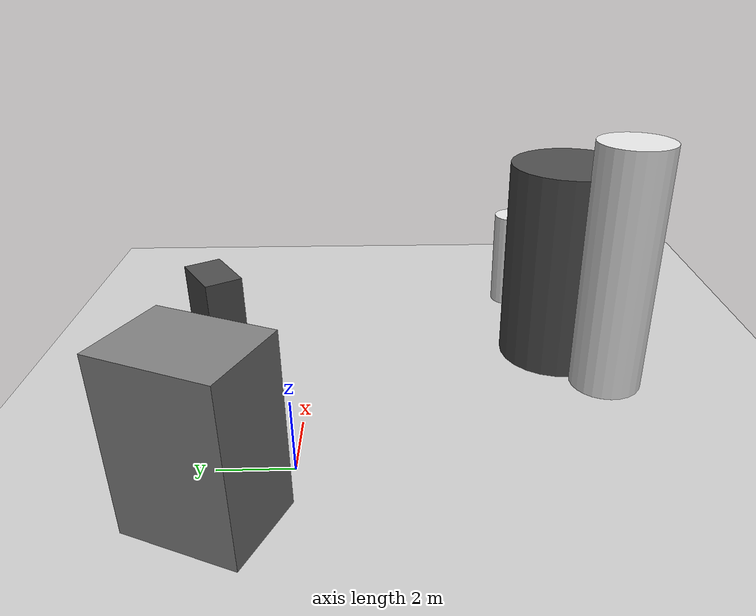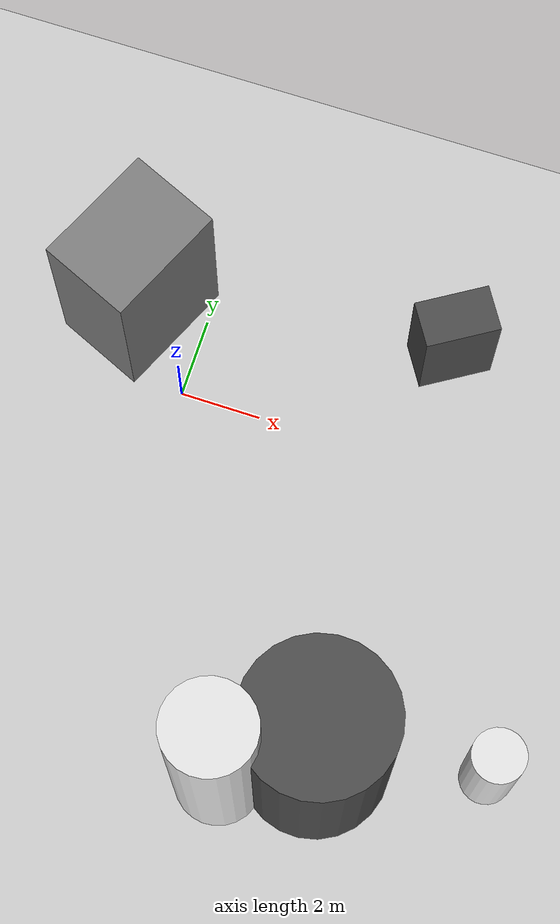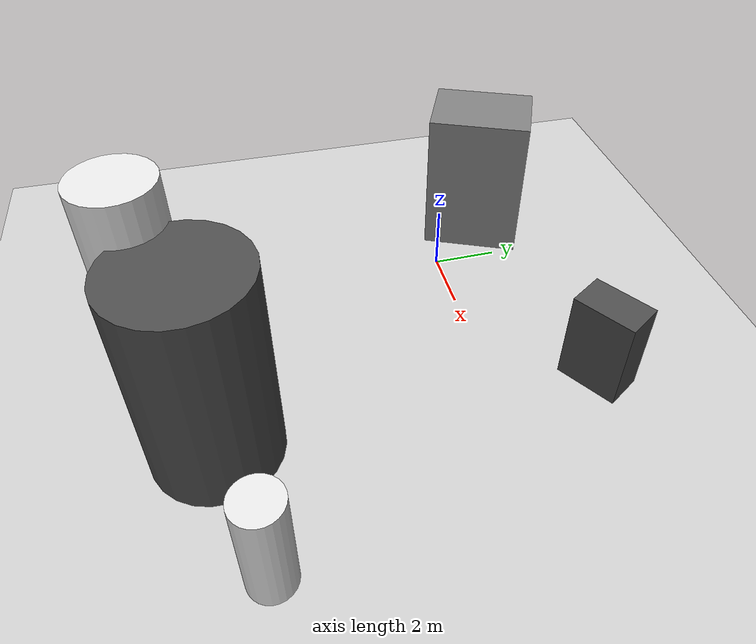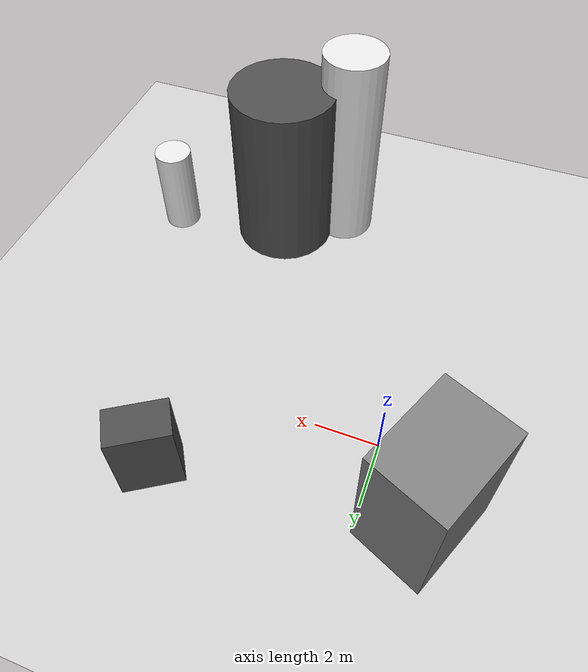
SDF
<?xml version='1.0'?>
<sdf version='1.6'>
  <world name='default'>
    <!-- Sun light -->
    <light name='sun' type='directional'>
      <cast_shadows>1</cast_shadows>
      <pose>0 0 10 0 0 0</pose>
      <diffuse>0.8 0.8 0.8 1</diffuse>
      <specular>0.2 0.2 0.2 1</specular>
      <attenuation>
        <range>1000</range>
        <constant>0.9</constant>
        <linear>0.01</linear>
        <quadratic>0.001</quadratic>
      </attenuation>
      <direction>-0.5 0.1 -0.9</direction>
    </light>

    <!-- Ground plane -->
    <model name='ground_plane'>
      <static>1</static>
      <link name='link'>
        <collision name='collision'>
          <geometry>
            <plane>
              <normal>0 0 1</normal>
              <size>100 100</size>
            </plane>
          </geometry>
          <surface>
            <contact>
              <collide_bitmask>65535</collide_bitmask>
              <ode/>
            </contact>
            <friction>
              <ode>
                <mu>100</mu>
                <mu2>50</mu2>
              </ode>
              <torsional><ode/></torsional>
            </friction>
            <bounce/>
          </surface>
          <max_contacts>10</max_contacts>
        </collision>
        <visual name='visual'>
          <cast_shadows>0</cast_shadows>
          <geometry>
            <plane>
              <normal>0 0 1</normal>
              <size>100 100</size>
            </plane>
          </geometry>
          <material>
            <script>
              <uri>file://media/materials/scripts/gazebo.material</uri>
              <n>Gazebo/Grey</n>
            </script>
          </material>
        </visual>
      </link>
    </model>

    <!-- Environment -->
    <magnetic_field>6e-06 2.3e-05 -4.2e-05</magnetic_field>
    <atmosphere type='adiabatic'/>
    <physics name='default_physics' default='0' type='ode'>
      <gravity>0 0 -9.8</gravity>
      <max_step_size>0.004</max_step_size>
      <real_time_factor>1</real_time_factor>
      <real_time_update_rate>250</real_time_update_rate>
    </physics>
    <scene>
      <ambient>0.4 0.4 0.4 1</ambient>
      <background>0.7 0.7 0.7 1</background>
      <shadows>1</shadows>
    </scene>
    <wind/>
    <spherical_coordinates>
      <surface_model>EARTH_WGS84</surface_model>
      <latitude_deg>0</latitude_deg>
      <longitude_deg>0</longitude_deg>
      <elevation>0</elevation>
      <heading_deg>0</heading_deg>
    </spherical_coordinates>

    <!-- ============ OBSTACLES (5) ============ -->
    <model name='obs_00'>
      <static>1</static>
      <link name='link'>
        <visual name='visual'>
          <geometry>
            <box>
              <size>1.1344 1.8291 2.7930</size>
            </box>
          </geometry>
          <material>
            <script>
              <n>Gazebo/DarkGrey</n>
              <uri>file://media/materials/scripts/gazebo.material</uri>
            </script>
            <ambient>0.3 0.3 0.3 1</ambient>
          </material>
        </visual>
        <collision name='collision'>
          <geometry>
            <box>
              <size>1.1344 1.8291 2.7930</size>
            </box>
          </geometry>
          <max_contacts>10</max_contacts>
          <surface>
            <contact><ode/></contact>
            <bounce/>
            <friction>
              <ode><mu>1</mu><mu2>1</mu2></ode>
              <torsional><ode/></torsional>
            </friction>
          </surface>
        </collision>
      </link>
      <pose>5.9980 2.9769 1.3965 0 0 2.1312</pose>
    </model>

    <model name='obs_01'>
      <static>1</static>
      <link name='link'>
        <visual name='visual'>
          <geometry>
            <cylinder>
              <radius>1.7779</radius>
              <length>6.0910</length>
            </cylinder>
          </geometry>
          <material>
            <script>
              <n>Gazebo/DarkGrey</n>
              <uri>file://media/materials/scripts/gazebo.material</uri>
            </script>
            <ambient>0.3 0.3 0.3 1</ambient>
          </material>
        </visual>
        <collision name='collision'>
          <geometry>
            <cylinder>
              <radius>1.7779</radius>
              <length>6.0910</length>
            </cylinder>
          </geometry>
          <max_contacts>10</max_contacts>
          <surface>
            <contact><ode/></contact>
            <bounce/>
            <friction>
              <ode><mu>1</mu><mu2>1</mu2></ode>
              <torsional><ode/></torsional>
            </friction>
          </surface>
        </collision>
      </link>
      <pose>5.9382 -7.7389 3.0455 0 0 2.7099</pose>
    </model>

    <model name='obs_02'>
      <static>1</static>
      <link name='link'>
        <visual name='visual'>
          <geometry>
            <cylinder>
              <radius>1.0530</radius>
              <length>7.2132</length>
            </cylinder>
          </geometry>
          <material>
            <script>
              <n>Gazebo/White</n>
              <uri>file://media/materials/scripts/gazebo.material</uri>
            </script>
            <ambient>0.9 0.9 0.9 1</ambient>
          </material>
        </visual>
        <collision name='collision'>
          <geometry>
            <cylinder>
              <radius>1.0530</radius>
              <length>7.2132</length>
            </cylinder>
          </geometry>
          <max_contacts>10</max_contacts>
          <surface>
            <contact><ode/></contact>
            <bounce/>
            <friction>
              <ode><mu>1</mu><mu2>1</mu2></ode>
              <torsional><ode/></torsional>
            </friction>
          </surface>
        </collision>
      </link>
      <pose>3.9234 -8.8271 3.6066 0 0 1.5176</pose>
    </model>

    <model name='obs_03'>
      <static>1</static>
      <link name='link'>
        <visual name='visual'>
          <geometry>
            <cylinder>
              <radius>0.6340</radius>
              <length>3.1997</length>
            </cylinder>
          </geometry>
          <material>
            <script>
              <n>Gazebo/White</n>
              <uri>file://media/materials/scripts/gazebo.material</uri>
            </script>
            <ambient>0.9 0.9 0.9 1</ambient>
          </material>
        </visual>
        <collision name='collision'>
          <geometry>
            <cylinder>
              <radius>0.6340</radius>
              <length>3.1997</length>
            </cylinder>
          </geometry>
          <max_contacts>10</max_contacts>
          <surface>
            <contact><ode/></contact>
            <bounce/>
            <friction>
              <ode><mu>1</mu><mu2>1</mu2></ode>
              <torsional><ode/></torsional>
            </friction>
          </surface>
        </collision>
      </link>
      <pose>9.8493 -6.8121 1.5998 0 0 0.1444</pose>
    </model>

    <model name='obs_04'>
      <static>1</static>
      <link name='link'>
        <visual name='visual'>
          <geometry>
            <box>
              <size>2.3369 3.1027 4.6189</size>
            </box>
          </geometry>
          <material>
            <script>
              <n>Gazebo/Grey</n>
              <uri>file://media/materials/scripts/gazebo.material</uri>
            </script>
            <ambient>0.5 0.5 0.5 1</ambient>
          </material>
        </visual>
        <collision name='collision'>
          <geometry>
            <box>
              <size>2.3369 3.1027 4.6189</size>
            </box>
          </geometry>
          <max_contacts>10</max_contacts>
          <surface>
            <contact><ode/></contact>
            <bounce/>
            <friction>
              <ode><mu>1</mu><mu2>1</mu2></ode>
              <torsional><ode/></torsional>
            </friction>
          </surface>
        </collision>
      </link>
      <pose>-1.6794 1.8150 2.3094 0 0 2.7279</pose>
    </model>

    <!-- GUI camera -->
    <gui fullscreen='0'>
      <camera name='user_camera'>
        <pose>-15 0 18 0 0.85 0.15</pose>
        <view_controller>orbit</view_controller>
        <projection_type>perspective</projection_type>
      </camera>
    </gui>
  </world>
</sdf>
